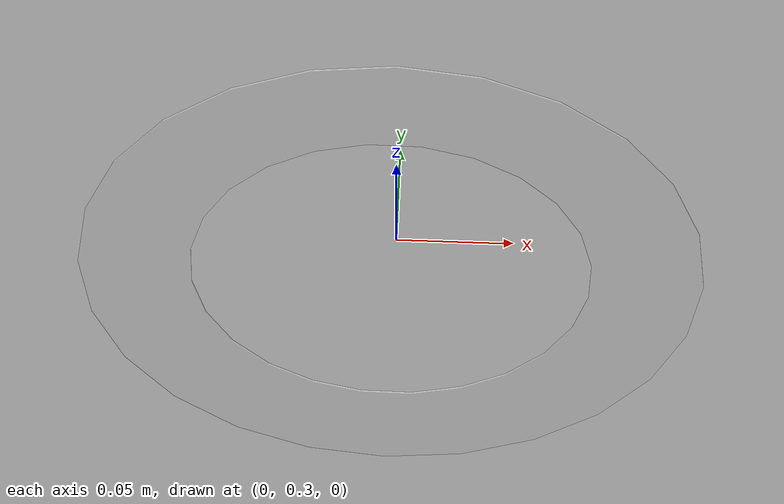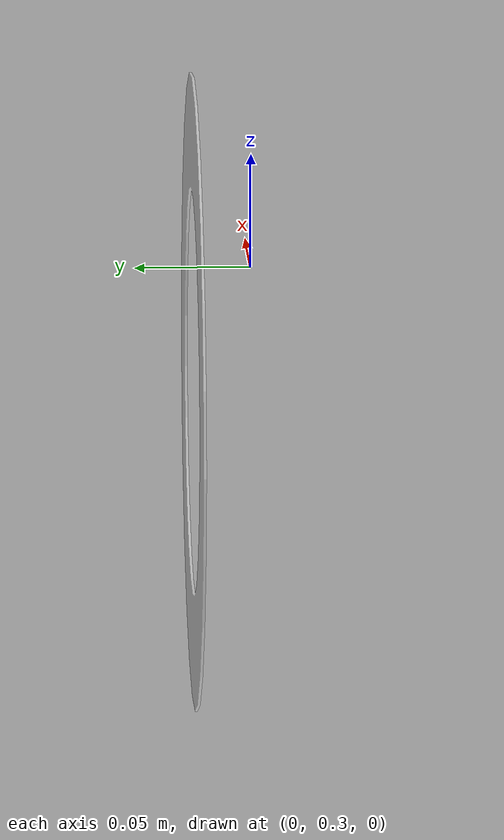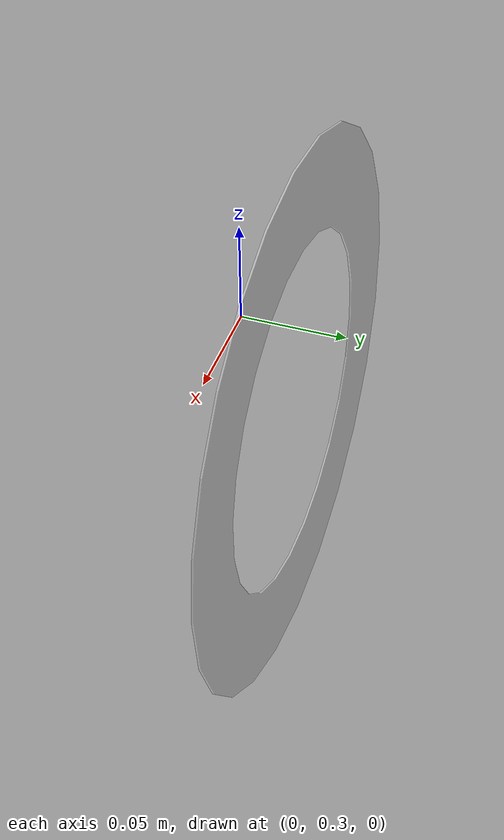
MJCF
<mujoco model="original-11">
  <default>
    <default class="visual">
      <geom group="2" type="mesh" contype="0" conaffinity="0"/>
    </default>
    <default class="collision">
      <geom group="3" type="mesh"/>
    </default>
  </default>
  <asset>
    <material name="material_0_0" specular="0.06666666666666667" shininess="0.03" rgba="0.8627450980392157 0.8627450980392157 0.8627450980392157 0.5019608"/>
    <mesh file="original-11.obj"/>
  </asset>
  <worldbody>
    <body name="original-11">
      <geom material="material_0_0" mesh="original-11" class="visual"/>
      <geom mesh="original-11" class="collision"/>
    </body>
  </worldbody>
</mujoco>
